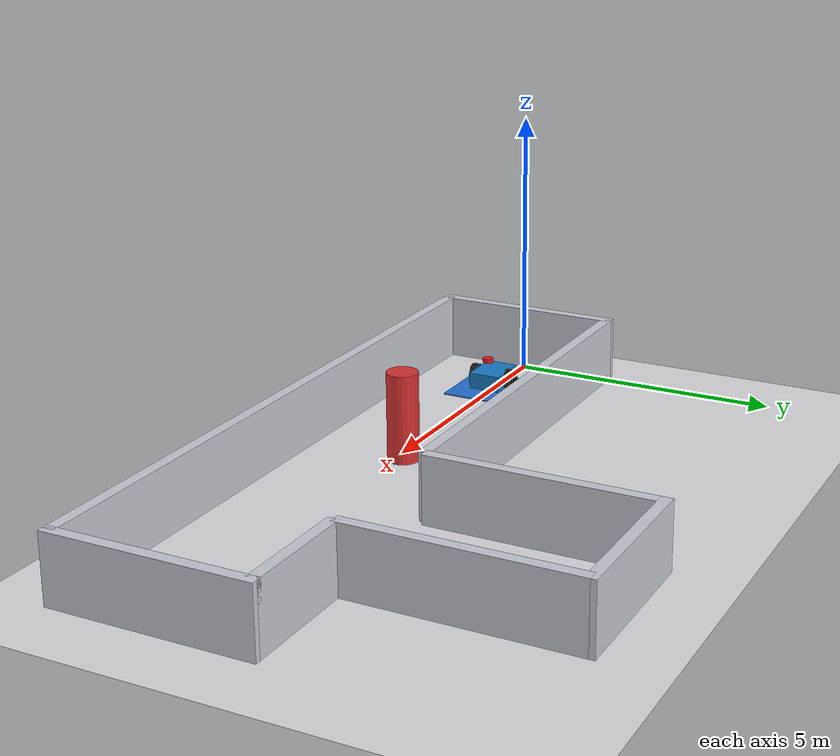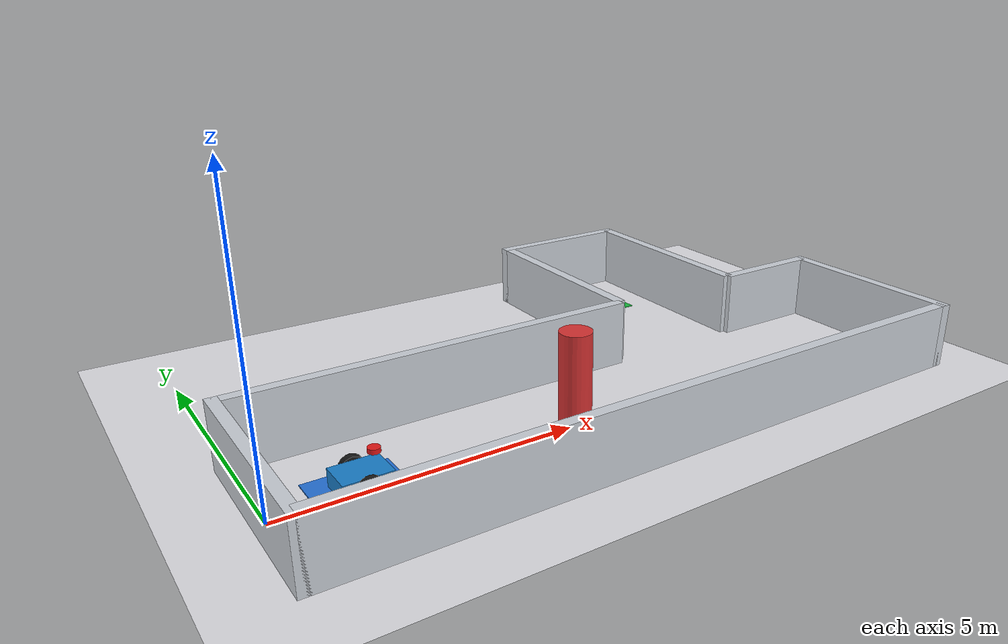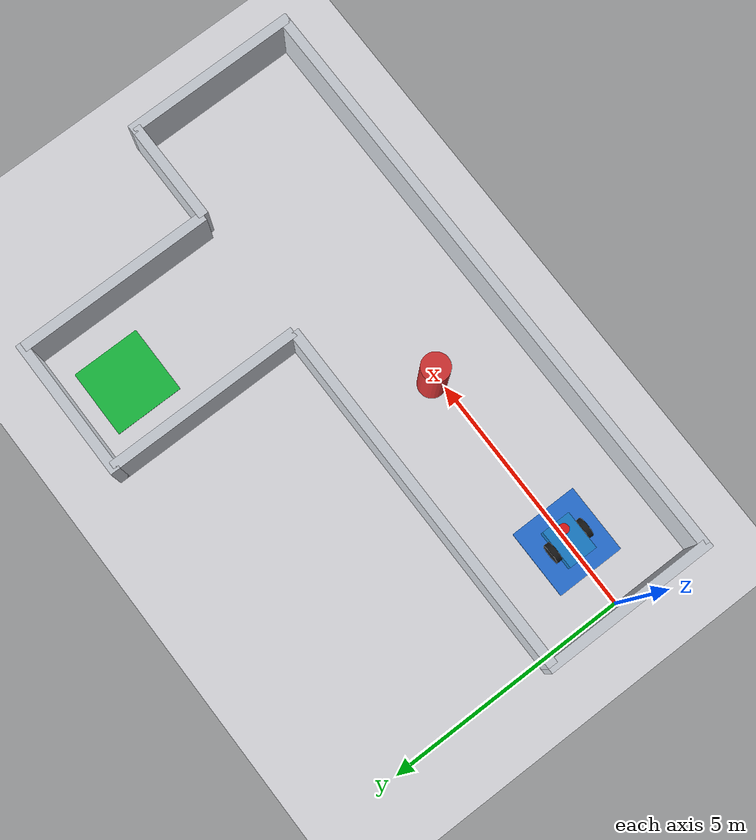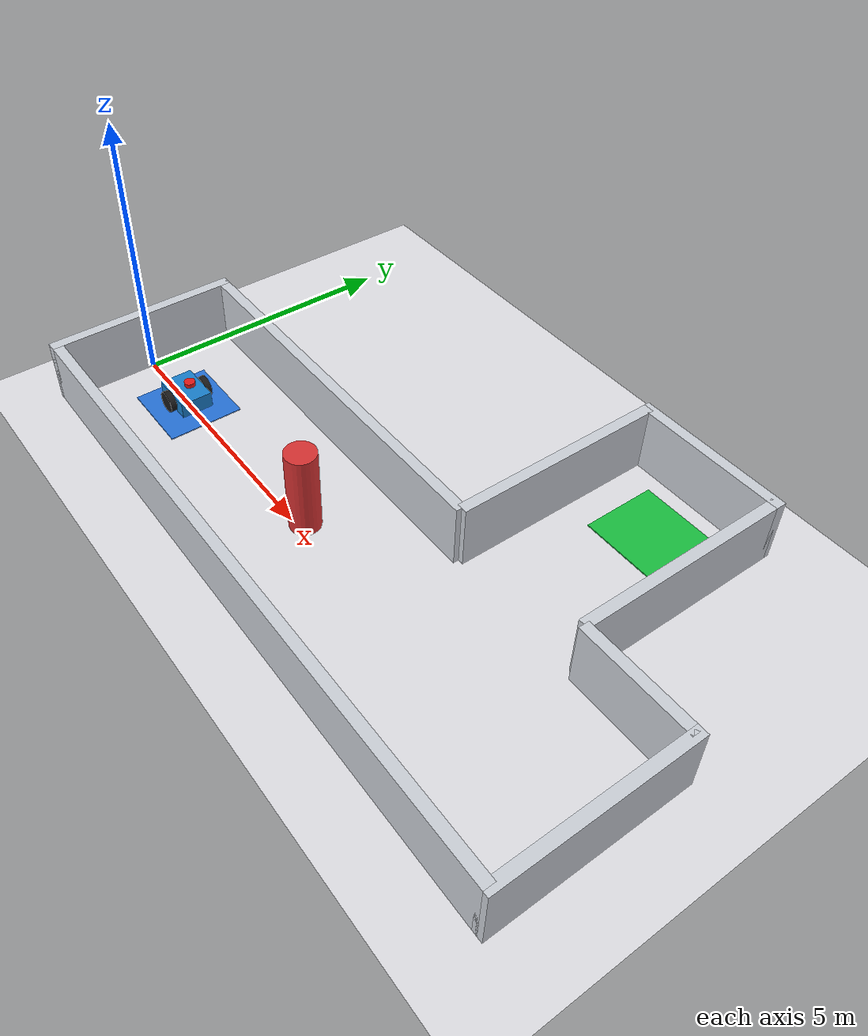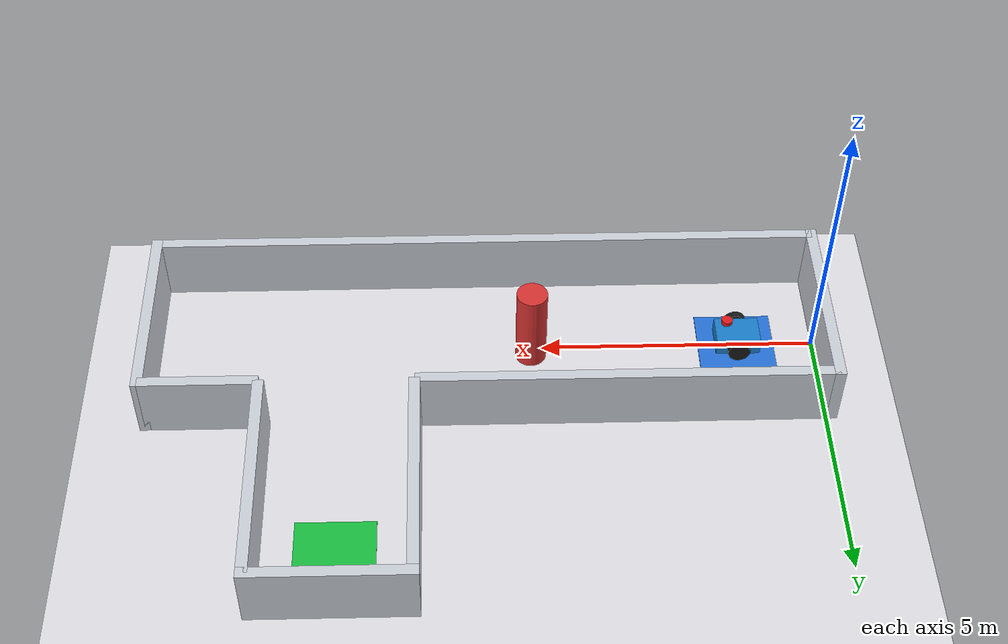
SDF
<?xml version="1.0" ?>
<sdf version="1.9">
  <world name="hospital_nav_world">
    <physics name="1ms" type="ignored">
      <max_step_size>0.001</max_step_size>
      <real_time_factor>1.0</real_time_factor>
    </physics>
    <plugin filename="gz-sim-physics-system" name="gz::sim::systems::Physics"/>
    <plugin filename="gz-sim-user-commands-system" name="gz::sim::systems::UserCommands"/>
    <plugin filename="gz-sim-scene-broadcaster-system" name="gz::sim::systems::SceneBroadcaster"/>
    <plugin filename="gz-sim-sensors-system" name="gz::sim::systems::Sensors">
      <render_engine>ogre</render_engine>
    </plugin>

    <scene>
      <ambient>1.0 1.0 1.0 1</ambient>
      <background>0.85 0.92 0.95 1</background>
      <shadows>false</shadows>
    </scene>
    <light type="directional" name="sun">
      <diffuse>1 1 1 1</diffuse>
      <specular>0.25 0.25 0.25 1</specular>
      <direction>-0.5 0.5 -1</direction>
    </light>

    <model name="ground_plane">
      <static>true</static>
      <link name="link">
        <collision name="collision"><geometry><plane><normal>0 0 1</normal><size>30 30</size></plane></geometry></collision>
        <visual name="visual">
          <geometry><plane><normal>0 0 1</normal><size>30 30</size></plane></geometry>
          <material><ambient>0.88 0.88 0.90 1</ambient><diffuse>0.88 0.88 0.90 1</diffuse></material>
        </visual>
      </link>
    </model>

    <!-- STATIC MAP (also encoded in hospital_nav.py) -->
    <model name="wall_south">
      <static>true</static><pose>6.0 -1.7 0.6 0 0 0</pose>
      <link name="link">
        <visual name="v"><geometry><box><size>12.2 0.20 1.2</size></box></geometry><material><ambient>0.80 0.82 0.85 1</ambient></material></visual>
        <collision name="c"><geometry><box><size>12.2 0.20 1.2</size></box></geometry></collision>
      </link>
    </model>
    <model name="wall_west">
      <static>true</static><pose>-0.1 0.0 0.6 0 0 0</pose>
      <link name="link">
        <visual name="v"><geometry><box><size>0.20 3.6 1.2</size></box></geometry><material><ambient>0.80 0.82 0.85 1</ambient></material></visual>
        <collision name="c"><geometry><box><size>0.20 3.6 1.2</size></box></geometry></collision>
      </link>
    </model>
    <model name="wall_east">
      <static>true</static><pose>12.1 0.0 0.6 0 0 0</pose>
      <link name="link">
        <visual name="v"><geometry><box><size>0.20 3.6 1.2</size></box></geometry><material><ambient>0.80 0.82 0.85 1</ambient></material></visual>
        <collision name="c"><geometry><box><size>0.20 3.6 1.2</size></box></geometry></collision>
      </link>
    </model>
    <!-- North corridor wall is split so the patient room opens off the corridor -->
    <model name="wall_north_a">
      <static>true</static><pose>3.6 1.7 0.6 0 0 0</pose>
      <link name="link">
        <visual name="v"><geometry><box><size>7.4 0.20 1.2</size></box></geometry><material><ambient>0.80 0.82 0.85 1</ambient></material></visual>
        <collision name="c"><geometry><box><size>7.4 0.20 1.2</size></box></geometry></collision>
      </link>
    </model>
    <model name="wall_north_b">
      <static>true</static><pose>11.05 1.7 0.6 0 0 0</pose>
      <link name="link">
        <visual name="v"><geometry><box><size>2.1 0.20 1.2</size></box></geometry><material><ambient>0.80 0.82 0.85 1</ambient></material></visual>
        <collision name="c"><geometry><box><size>2.1 0.20 1.2</size></box></geometry></collision>
      </link>
    </model>
    <model name="room_west">
      <static>true</static><pose>7.3 3.7 0.6 0 0 0</pose>
      <link name="link">
        <visual name="v"><geometry><box><size>0.20 4.0 1.2</size></box></geometry><material><ambient>0.80 0.82 0.85 1</ambient></material></visual>
        <collision name="c"><geometry><box><size>0.20 4.0 1.2</size></box></geometry></collision>
      </link>
    </model>
    <model name="room_east">
      <static>true</static><pose>10.0 3.7 0.6 0 0 0</pose>
      <link name="link">
        <visual name="v"><geometry><box><size>0.20 4.0 1.2</size></box></geometry><material><ambient>0.80 0.82 0.85 1</ambient></material></visual>
        <collision name="c"><geometry><box><size>0.20 4.0 1.2</size></box></geometry></collision>
      </link>
    </model>
    <model name="room_north">
      <static>true</static><pose>8.65 5.7 0.6 0 0 0</pose>
      <link name="link">
        <visual name="v"><geometry><box><size>2.9 0.20 1.2</size></box></geometry><material><ambient>0.80 0.82 0.85 1</ambient></material></visual>
        <collision name="c"><geometry><box><size>2.9 0.20 1.2</size></box></geometry></collision>
      </link>
    </model>

    <model name="pharmacy_pad">
      <static>true</static><pose>1.4 0.0 0.01 0 0 0</pose>
      <link name="link">
        <visual name="v"><geometry><box><size>1.4 1.4 0.02</size></box></geometry>
          <material><ambient>0.15 0.45 0.85 1</ambient><diffuse>0.15 0.45 0.85 1</diffuse></material>
        </visual>
      </link>
    </model>
    <model name="patient_pad">
      <static>true</static><pose>8.65 4.6 0.01 0 0 0</pose>
      <link name="link">
        <visual name="v"><geometry><box><size>1.4 1.4 0.02</size></box></geometry>
          <material><ambient>0.10 0.75 0.25 1</ambient><diffuse>0.10 0.75 0.25 1</diffuse></material>
        </visual>
      </link>
    </model>

    <!-- Person NOT in the static map — robot must detect with LiDAR and replan -->
    <model name="visitor">
      <static>true</static><pose>5.2 0.15 0.8 0 0 0</pose>
      <link name="link">
        <visual name="v"><geometry><cylinder><radius>0.28</radius><length>1.6</length></cylinder></geometry>
          <material><ambient>0.85 0.2 0.2 1</ambient><diffuse>0.85 0.2 0.2 1</diffuse></material>
        </visual>
        <collision name="c"><geometry><cylinder><radius>0.28</radius><length>1.6</length></cylinder></geometry></collision>
      </link>
    </model>

    <model name="hospital_robot">
      <pose>1.4 0.0 0.25 0 0 0</pose>
      <link name="base_link">
        <inertial><mass>1.0</mass><inertia><ixx>0.035</ixx><iyy>0.078</iyy><izz>0.095</izz></inertia></inertial>
        <collision name="c"><geometry><box><size>0.8 0.6 0.3</size></box></geometry></collision>
        <visual name="v"><geometry><box><size>0.8 0.6 0.3</size></box></geometry>
          <material><ambient>0.1 0.5 0.8 1</ambient><diffuse>0.1 0.5 0.8 1</diffuse></material>
        </visual>
      </link>
      <link name="left_wheel">
        <pose>0 0.36 0.0 0 0 0</pose>
        <inertial><mass>0.15</mass><inertia><ixx>0.003</ixx><iyy>0.003</iyy><izz>0.003</izz></inertia></inertial>
        <collision name="c"><pose>0 0 0 1.5708 0 0</pose><geometry><cylinder><radius>0.20</radius><length>0.12</length></cylinder></geometry>
          <surface><friction><ode><mu>10</mu><mu2>10</mu2></ode></friction></surface>
        </collision>
        <visual name="v"><pose>0 0 0 1.5708 0 0</pose><geometry><cylinder><radius>0.20</radius><length>0.12</length></cylinder></geometry>
          <material><ambient>0.1 0.1 0.1 1</ambient></material>
        </visual>
      </link>
      <link name="right_wheel">
        <pose>0 -0.36 0.0 0 0 0</pose>
        <inertial><mass>0.15</mass><inertia><ixx>0.003</ixx><iyy>0.003</iyy><izz>0.003</izz></inertia></inertial>
        <collision name="c"><pose>0 0 0 1.5708 0 0</pose><geometry><cylinder><radius>0.20</radius><length>0.12</length></cylinder></geometry>
          <surface><friction><ode><mu>10</mu><mu2>10</mu2></ode></friction></surface>
        </collision>
        <visual name="v"><pose>0 0 0 1.5708 0 0</pose><geometry><cylinder><radius>0.20</radius><length>0.12</length></cylinder></geometry>
          <material><ambient>0.1 0.1 0.1 1</ambient></material>
        </visual>
      </link>
      <link name="caster">
        <pose>-0.30 0 -0.12 0 0 0</pose>
        <inertial><mass>0.05</mass><inertia><ixx>0.0002</ixx><iyy>0.0002</iyy><izz>0.0002</izz></inertia></inertial>
        <collision name="c"><geometry><sphere><radius>0.08</radius></sphere></geometry>
          <surface><friction><ode><mu>0.01</mu><mu2>0.01</mu2></ode></friction></surface>
        </collision>
        <visual name="v"><geometry><sphere><radius>0.08</radius></sphere></geometry>
          <material><ambient>0.3 0.3 0.3 1</ambient></material>
        </visual>
      </link>
      <link name="lidar_link">
        <pose>0.22 0 0.40 0 0 0</pose>
        <inertial><mass>0.05</mass><inertia><ixx>0.0001</ixx><iyy>0.0001</iyy><izz>0.0001</izz></inertia></inertial>
        <visual name="lidar_visual"><geometry><cylinder><radius>0.10</radius><length>0.08</length></cylinder></geometry>
          <material><ambient>0.9 0.1 0.1 1</ambient></material>
        </visual>
        <sensor name="lidar" type="gpu_lidar">
          <always_on>true</always_on>
          <visualize>true</visualize>
          <update_rate>8</update_rate>
          <topic>/robot/scan</topic>
          <lidar>
            <scan>
              <horizontal>
                <samples>120</samples>
                <resolution>1</resolution>
                <min_angle>-3.14159</min_angle>
                <max_angle>3.14159</max_angle>
              </horizontal>
            </scan>
            <range><min>0.30</min><max>8.0</max><resolution>0.05</resolution></range>
          </lidar>
        </sensor>
      </link>
      <joint name="lwj" type="revolute"><parent>base_link</parent><child>left_wheel</child><axis><xyz>0 1 0</xyz></axis></joint>
      <joint name="rwj" type="revolute"><parent>base_link</parent><child>right_wheel</child><axis><xyz>0 1 0</xyz></axis></joint>
      <joint name="cj" type="fixed"><parent>base_link</parent><child>caster</child></joint>
      <joint name="lidar_joint" type="fixed"><parent>base_link</parent><child>lidar_link</child></joint>
      <plugin filename="gz-sim-diff-drive-system" name="gz::sim::systems::DiffDrive">
        <left_joint>lwj</left_joint>
        <right_joint>rwj</right_joint>
        <wheel_separation>0.72</wheel_separation>
        <wheel_radius>0.20</wheel_radius>
        <odom_publish_frequency>30</odom_publish_frequency>
        <odom_topic>/robot/odometry</odom_topic>
        <topic>/robot/cmd_vel</topic>
      </plugin>
    </model>
  </world>
</sdf>
